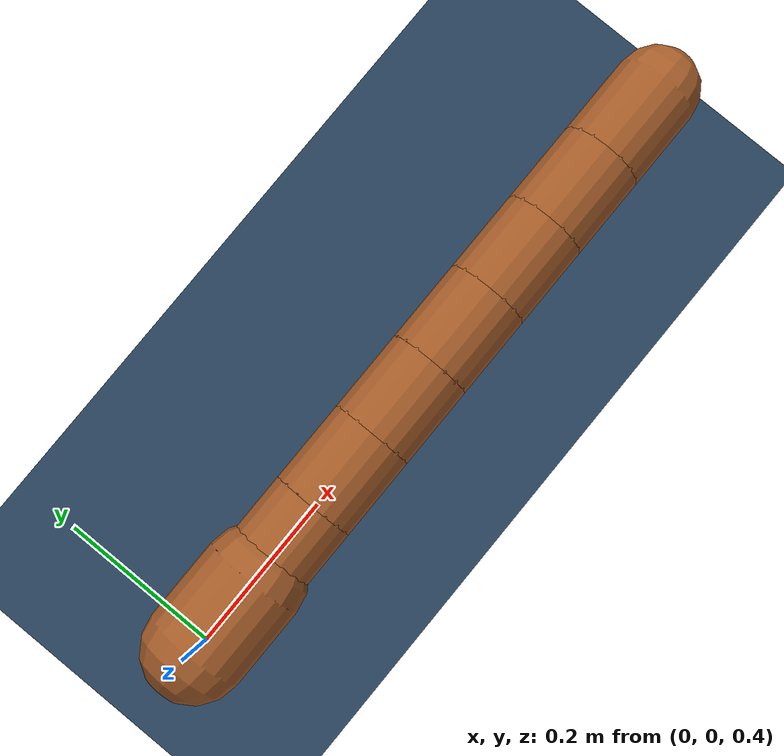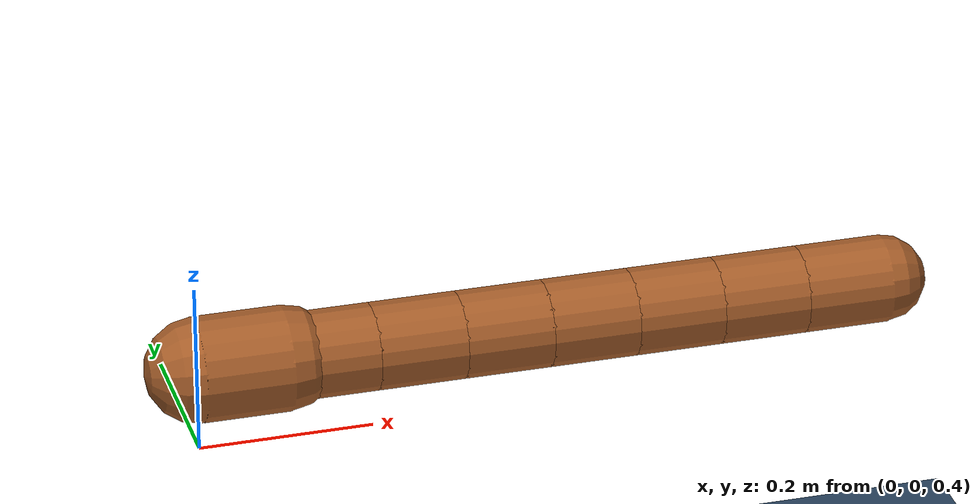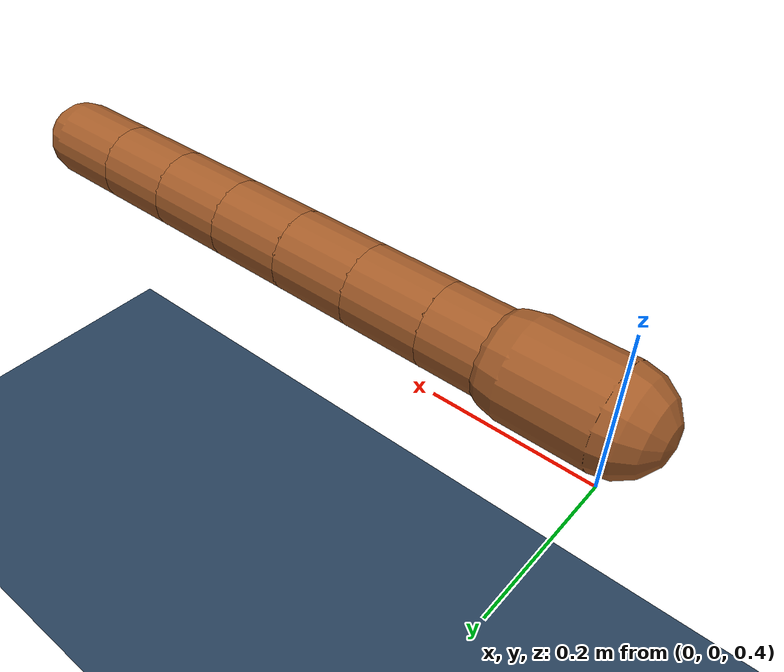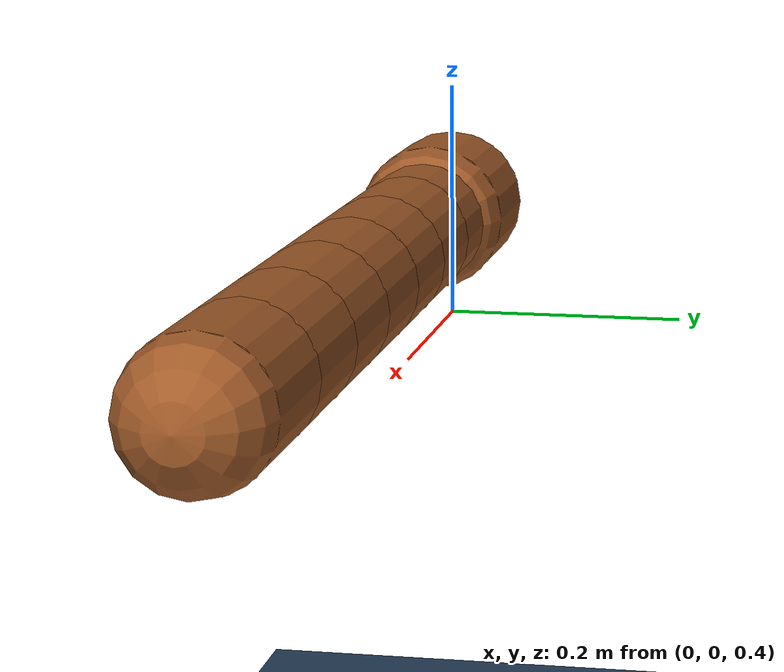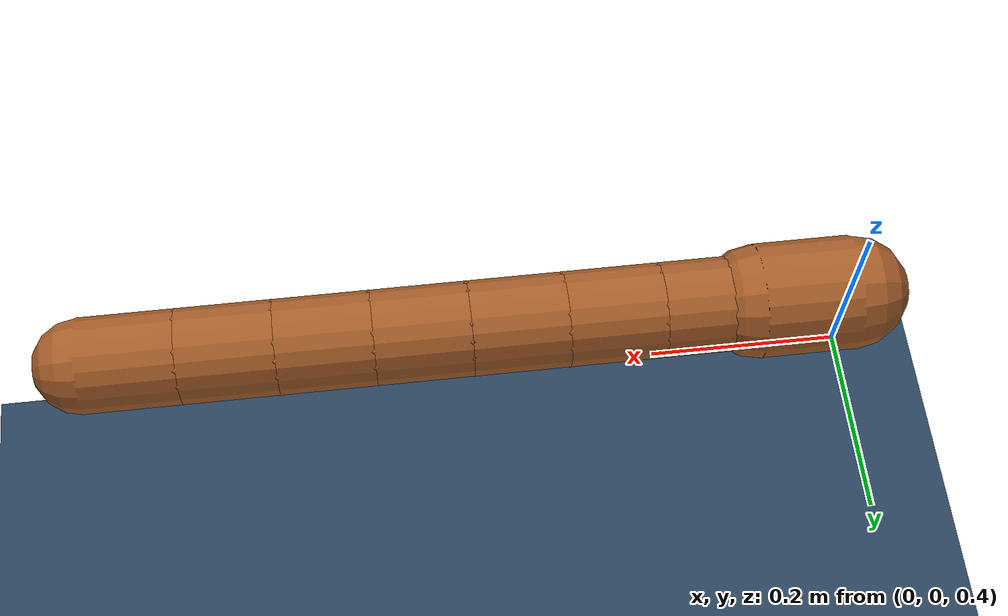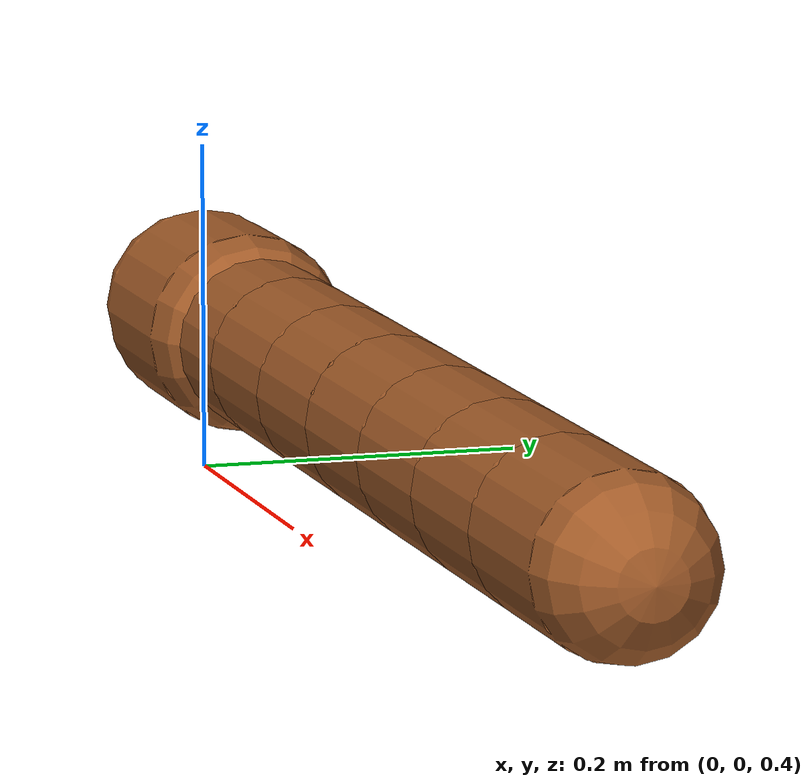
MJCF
<mujoco model="Snake">
    <option timestep="0.01"/>

    <asset>
        <texture type="skybox" builtin="gradient" rgb1=".3 .5 .7" rgb2="0 0 0" width="512" height="512"/>
        <texture name="body" type="cube" builtin="flat" mark="cross" width="127" height="1278"
                 rgb1="0.8 0.6 0.4" rgb2="0.8 0.6 0.4" markrgb="1 1 1" random="0.01"/>
        <material name="body" texture="body" texuniform="true" rgba="0.8 0.6 .4 1"/>
        <texture name="grid" type="2d" builtin="checker" width="512" height="512" rgb1=".1 .2 .3" rgb2=".2 .3 .4"/>
        <material name="grid" texture="grid" texrepeat="1 1" texuniform="true" reflectance=".2"/>
    </asset>

    <default>
        <motor ctrlrange="-1 1" ctrllimited="true"/>
        <default class="body">
            <geom type="capsule" condim="6" friction=".7" solimp=".9 .99 .003" solref=".015 1" material="body"/>
            <joint type="hinge" damping=".2" stiffness="1" armature=".01" limited="true" solimplimit="0 .99 .01"/>
          </default>
    </default>

    <visual>
        <map force="0.1" zfar="30"/>
        <rgba haze="0.9 0.9 0.15 1"/>
        <quality shadowsize="4096"/>
        <global offwidth="800" offheight="800"/>
    </visual>

    <worldbody>
        <geom name="floor" size="0 0 .05" type="plane" material="grid" condim="3"/>
        <light name="spotlight" mode="targetbodycom" target="head"
            diffuse=".8 .8 .8" specular="0.3 0.3 0.3" pos="0 -20 4" cutoff="10"/>

        <body name="head" pos="0 0 0.5" childclass="body">
            <light name="top" pos="0 0 2" mode="trackcom"/>
            <camera name="back" pos="-3 0 1" xyaxes="0 -1 0 1 0 2" mode="trackcom"/>
            <camera name="side" pos="0 -3 1" xyaxes="1 0 0 0 1 2" mode="trackcom"/>
            <freejoint name="root"/>
            <geom name="head" fromto="0 0 0 0.1 0 0" size=".06"/>

            <body name="segment_0" pos="0.1 0 0 ">
                <geom name="segment_0" fromto="0 0 0 0.1 0 0" size=".05"/>
                <joint name="curl_0" pos="0 0 0" axis="0 1 0" range="-45 45"/>

            <body name="segment_1" pos="0.1 0 0 ">
                <geom name="segment_1" fromto="0 0 0 0.1 0 0" size=".05"/>
                <joint name="twist_1" pos="0 0 0" axis="1 0 0" range="-10 10"/>

            <body name="segment_2" pos="0.1 0 0 ">
                <geom name="segment_2" fromto="0 0 0 0.1 0 0" size=".05"/>
                <joint name="curl_2" pos="0 0 0" axis="0 1 0" range="-45 45"/>

            <body name="segment_3" pos="0.1 0 0 ">
                <geom name="segment_3" fromto="0 0 0 0.1 0 0" size=".05"/>
                <joint name="curl_3" pos="0 0 0" axis="0 1 0" range="-45 45"/>

            <body name="segment_4" pos="0.1 0 0 ">
                <geom name="segment_4" fromto="0 0 0 0.1 0 0" size=".05"/>
                <joint name="curl_4" pos="0 0 0" axis="0 1 0" range="-45 45"/>

            <body name="segment_5" pos="0.1 0 0 ">
                <geom name="segment_5" fromto="0 0 0 0.1 0 0" size=".05"/>
                <joint name="curl_5" pos="0 0 0" axis="0 1 0" range="-45 45"/>

            <body name="segment_6" pos="0.1 0 0 ">
                <geom name="segment_6" fromto="0 0 0 0.1 0 0" size=".05"/>
                <joint name="twist_6" pos="0 0 0" axis="1 0 0" range="-10 10"/>

    </body>

        </body>

        </body>

        </body>

        </body>

        </body>

        </body>

        </body>

    </worldbody>

    <actuator>

            <motor name="curl_0"  gear="40"  joint="curl_0"/>

            <motor name="twist_1"  gear="120"  joint="twist_1"/>

            <motor name="curl_2"  gear="40"  joint="curl_2"/>

            <motor name="curl_3"  gear="40"  joint="curl_3"/>

            <motor name="curl_4"  gear="40"  joint="curl_4"/>

            <motor name="curl_5"  gear="40"  joint="curl_5"/>

            <motor name="twist_6"  gear="120"  joint="twist_6"/>

    </actuator>

    </mujoco>
